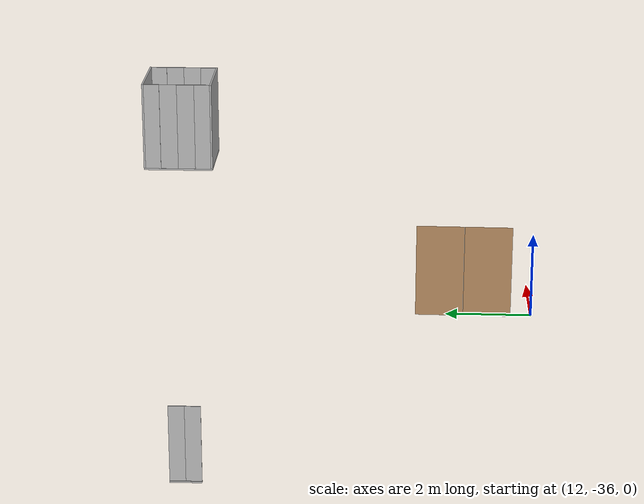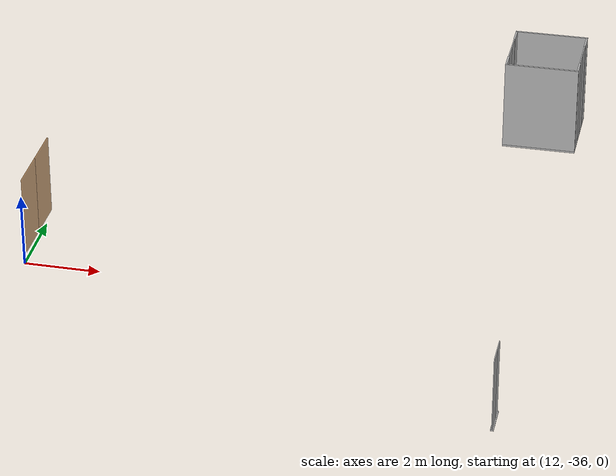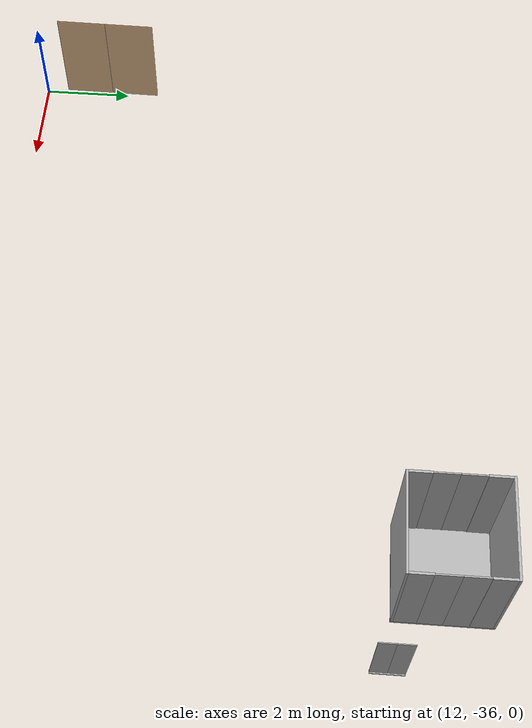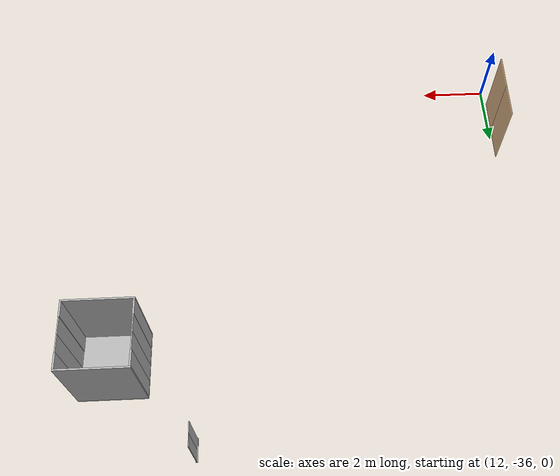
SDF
<sdf version="1.7">
 <world name="sim_world">
  <model name="door6">
   <pose>11.898422906864024 -34.40214692738752 0.0 0 0 -1.5884948974328337</pose>
   <link name="right">
    <pose>0.5618003268061672 0 1.11 0 0 0</pose>
    <visual name="right_visual">
     <geometry><box><size>1.1136006536123344 0.03 2.2</size></box></geometry>
     <material>
      <ambient>0.5 0.25 0 0.6</ambient>
      <diffuse>0.5 0.25 0 0.6</diffuse>
      <pbr><metal><metalness>0.0</metalness></metal></pbr>
     </material>
    </visual>
    <collision name="right_collision">
     <geometry><box><size>1.1136006536123344 0.03 2.2</size></box></geometry>
     <surface><contact><collide_bitmask>0x02</collide_bitmask></contact></surface>
    </collision>
    <inertial>
     <mass>50.0</mass>
     <inertia><ixx>20.17041666666667</ixx><iyy>25.333776732190913</iyy><izz>5.170860065524243</izz></inertia>
    </inertial>
   </link>
   <joint name="right_joint" type="revolute">
    <parent>world</parent>
    <child>right</child>
    <axis><xyz>0 0 -1</xyz><limit><lower>0</lower><upper>1.57</upper></limit></axis>
    <pose>0.5618003268061672 0 0 0 0 0</pose>
   </joint>
   <link name="left">
    <pose>-0.5618003268061672 0 1.11 0 0 0</pose>
    <visual name="left_visual">
     <geometry><box><size>1.1136006536123344 0.03 2.2</size></box></geometry>
     <material>
      <ambient>0.5 0.25 0 0.6</ambient>
      <diffuse>0.5 0.25 0 0.6</diffuse>
      <pbr><metal><metalness>0.0</metalness></metal></pbr>
     </material>
    </visual>
    <collision name="left_collision">
     <geometry><box><size>1.1136006536123344 0.03 2.2</size></box></geometry>
     <surface><contact><collide_bitmask>0x02</collide_bitmask></contact></surface>
    </collision>
    <inertial>
     <mass>50.0</mass>
     <inertia><ixx>20.17041666666667</ixx><iyy>25.333776732190913</iyy><izz>5.170860065524243</izz></inertia>
    </inertial>
   </link>
   <joint name="left_joint" type="revolute">
    <parent>world</parent>
    <child>left</child>
    <axis><xyz>0 0 -1</xyz><limit><lower>-1.57</lower><upper>0</upper></limit></axis>
    <pose>-0.5618003268061672 0 0 0 0 0</pose>
   </joint>
   <plugin name="register_component" filename="libregister_component.so">
    <component name="Door">
     <v_max_door>0.5</v_max_door>
     <a_max_door>0.3</a_max_door>
     <a_nom_door>0.15</a_nom_door>
     <dx_min_door>0.01</dx_min_door>
     <f_max_door>500.0</f_max_door>
     <ros_interface>true</ros_interface>
     <door name="door6" type="DoubleSwingDoor" left_joint_name="left_joint" right_joint_name="right_joint"/>
    </component>
   </plugin>
  </model>
  <model name="ShaftDoor_lift1_S1_doorS1">
   <pose>23.06746624736955 -26.387345423592567 -10.0 0 0 -1.57</pose>
   <link name="right_door">
    <pose>0.25 0 1.25 0 0 0</pose>
    <visual name="right_door_visual">
     <geometry><box><size>0.5 0.03 2.5</size></box></geometry>
     <material>
      <ambient>0.5 0.5 0.5 1</ambient>
      <diffuse>0.7 0.7 0.7 1</diffuse>
      <specular>0.6 0.6 0.6 1</specular>
      <emissive>0.1 0.1 0.1 1</emissive>
     </material>
    </visual>
    <collision name="right_door_collision">
     <geometry><box><size>0.5 0.03 2.5</size></box></geometry>
     <surface><contact><collide_bitmask>0x02</collide_bitmask></contact></surface>
    </collision>
   </link>
   <link name="left_door">
    <pose>-0.25 0 1.25 0 0 0</pose>
    <visual name="left_door_visual">
     <geometry><box><size>0.5 0.03 2.5</size></box></geometry>
     <material>
      <ambient>0.5 0.5 0.5 1</ambient>
      <diffuse>0.7 0.7 0.7 1</diffuse>
      <specular>0.6 0.6 0.6 1</specular>
      <emissive>0.1 0.1 0.1 1</emissive>
     </material>
    </visual>
    <collision name="left_door_collision">
     <geometry><box><size>0.5 0.03 2.5</size></box></geometry>
     <surface><contact><collide_bitmask>0x02</collide_bitmask></contact></surface>
    </collision>
   </link>
   <joint name="right_joint" type="prismatic">
    <parent>world</parent>
    <child>right_door</child>
    <axis><xyz>1 0 0</xyz><limit><lower>0</lower><upper>0.5</upper></limit></axis>
   </joint>
   <joint name="left_joint" type="prismatic">
    <parent>world</parent>
    <child>left_door</child>
    <axis><xyz>1 0 0</xyz><limit><lower>-0.5</lower><upper>0</upper></limit></axis>
   </joint>
   <link name="ramp">
    <pose>0 0 -0.025 0 0 0</pose>
    <visual name="ramp_visual">
     <geometry><box><size>1.0 0.1 0.05</size></box></geometry>
     <material>
      <ambient>0.5 0.5 0.5 1</ambient>
      <diffuse>0.7 0.7 0.7 1</diffuse>
      <specular>0.6 0.6 0.6 1</specular>
      <emissive>0.1 0.1 0.1 1</emissive>
     </material>
    </visual>
    <collision name="ramp_collision">
     <geometry><box><size>1.0 0.1 0.05</size></box></geometry>
     <surface><contact><collide_bitmask>0x02</collide_bitmask></contact></surface>
    </collision>
   </link>
   <joint name="ramp_joint" type="fixed"><parent>world</parent><child>ramp</child></joint>
   <plugin name="register_component" filename="libregister_component.so">
    <component name="Door">
     <v_max_door>0.3</v_max_door>
     <a_max_door>0.2</a_max_door>
     <a_nom_door>0.1</a_nom_door>
     <dx_min_door>0.0001</dx_min_door>
     <f_max_door>35.0</f_max_door>
     <door left_joint_name="left_joint" name="ShaftDoor_lift1_S1_doorS1" right_joint_name="right_joint" type="DoubleSlidingDoor"/>
    </component>
   </plugin>
  </model>
  <model name="lift1">
   <link name="platform">
    <inertial>
     <mass>1200</mass>
     <inertia><ixx>400.25000000000006</ixx><iyy>400.25000000000006</iyy><izz>800.0</izz></inertia>
    </inertial>
    <visual name="floor_visual">
     <pose>0 0 -0.025 0 0 0</pose>
     <geometry><box><size>2.0 2.0 0.05</size></box></geometry>
     <material>
      <ambient>0.5 0.5 0.5 1</ambient>
      <diffuse>0.7 0.7 0.7 1</diffuse>
      <specular>0.6 0.6 0.6 1</specular>
      <emissive>0.1 0.1 0.1 1</emissive>
     </material>
    </visual>
    <collision name="floor_collision">
     <pose>0 0 -0.025 0 0 0</pose>
     <geometry><box><size>2.0 2.0 0.05</size></box></geometry>
     <surface><contact><collide_bitmask>0x01</collide_bitmask></contact></surface>
    </collision>
    <visual name="frontwall1_visual">
     <pose>0.0 0.975 1.25 0 0 0</pose>
     <geometry><box><size>2.0 0.05 2.5</size></box></geometry>
     <material>
      <ambient>0.5 0.5 0.5 1</ambient>
      <diffuse>0.7 0.7 0.7 1</diffuse>
      <specular>0.6 0.6 0.6 1</specular>
      <emissive>0.1 0.1 0.1 1</emissive>
     </material>
    </visual>
    <collision name="frontwall1_collision">
     <pose>0.0 0.975 1.25 0 0 0</pose>
     <geometry><box><size>2.0 0.05 2.5</size></box></geometry>
     <surface><contact><collide_bitmask>0x01</collide_bitmask></contact></surface>
    </collision>
    <visual name="backwall1_visual">
     <pose>0.0 -0.975 1.25 0 0 0</pose>
     <geometry><box><size>2.0 0.05 2.5</size></box></geometry>
     <material>
      <ambient>0.5 0.5 0.5 1</ambient>
      <diffuse>0.7 0.7 0.7 1</diffuse>
      <specular>0.6 0.6 0.6 1</specular>
      <emissive>0.1 0.1 0.1 1</emissive>
     </material>
    </visual>
    <collision name="backwall1_collision">
     <pose>0.0 -0.975 1.25 0 0 0</pose>
     <geometry><box><size>2.0 0.05 2.5</size></box></geometry>
     <surface><contact><collide_bitmask>0x01</collide_bitmask></contact></surface>
    </collision>
    <visual name="leftwall1_visual">
     <pose>-0.975 -0.725 1.25 0 0 1.5707963267948966</pose>
     <geometry><box><size>0.44999999999999996 0.05 2.5</size></box></geometry>
     <material>
      <ambient>0.5 0.5 0.5 1</ambient>
      <diffuse>0.7 0.7 0.7 1</diffuse>
      <specular>0.6 0.6 0.6 1</specular>
      <emissive>0.1 0.1 0.1 1</emissive>
     </material>
    </visual>
    <collision name="leftwall1_collision">
     <pose>-0.975 -0.725 1.25 0 0 1.5707963267948966</pose>
     <geometry><box><size>0.44999999999999996 0.05 2.5</size></box></geometry>
     <surface><contact><collide_bitmask>0x01</collide_bitmask></contact></surface>
    </collision>
    <visual name="leftwall2_visual">
     <pose>-0.975 0.725 1.25 0 0 1.5707963267948966</pose>
     <geometry><box><size>0.44999999999999996 0.05 2.5</size></box></geometry>
     <material>
      <ambient>0.5 0.5 0.5 1</ambient>
      <diffuse>0.7 0.7 0.7 1</diffuse>
      <specular>0.6 0.6 0.6 1</specular>
      <emissive>0.1 0.1 0.1 1</emissive>
     </material>
    </visual>
    <collision name="leftwall2_collision">
     <pose>-0.975 0.725 1.25 0 0 1.5707963267948966</pose>
     <geometry><box><size>0.44999999999999996 0.05 2.5</size></box></geometry>
     <surface><contact><collide_bitmask>0x01</collide_bitmask></contact></surface>
    </collision>
    <visual name="rightwall1_visual">
     <pose>0.975 -0.725 1.25 0 0 1.5707963267948966</pose>
     <geometry><box><size>0.44999999999999996 0.05 2.5</size></box></geometry>
     <material>
      <ambient>0.5 0.5 0.5 1</ambient>
      <diffuse>0.7 0.7 0.7 1</diffuse>
      <specular>0.6 0.6 0.6 1</specular>
      <emissive>0.1 0.1 0.1 1</emissive>
     </material>
    </visual>
    <collision name="rightwall1_collision">
     <pose>0.975 -0.725 1.25 0 0 1.5707963267948966</pose>
     <geometry><box><size>0.44999999999999996 0.05 2.5</size></box></geometry>
     <surface><contact><collide_bitmask>0x01</collide_bitmask></contact></surface>
    </collision>
    <visual name="rightwall2_visual">
     <pose>0.975 0.725 1.25 0 0 1.5707963267948966</pose>
     <geometry><box><size>0.44999999999999996 0.05 2.5</size></box></geometry>
     <material>
      <ambient>0.5 0.5 0.5 1</ambient>
      <diffuse>0.7 0.7 0.7 1</diffuse>
      <specular>0.6 0.6 0.6 1</specular>
      <emissive>0.1 0.1 0.1 1</emissive>
     </material>
    </visual>
    <collision name="rightwall2_collision">
     <pose>0.975 0.725 1.25 0 0 1.5707963267948966</pose>
     <geometry><box><size>0.44999999999999996 0.05 2.5</size></box></geometry>
     <surface><contact><collide_bitmask>0x01</collide_bitmask></contact></surface>
    </collision>
   </link>
   <joint name="cabin_joint" type="prismatic">
    <parent>world</parent>
    <child>platform</child>
    <axis><xyz>0 0 1</xyz></axis>
   </joint>
   <model name="CabinDoor_lift1_doorL1">
    <pose>0.975 0.0 0 0 0 -1.57</pose>
    <link name="right_door">
     <pose>0.25 0 1.25 0 0 0</pose>
     <visual name="right_door_visual">
      <geometry><box><size>0.5 0.03 2.5</size></box></geometry>
      <material>
       <ambient>0.5 0.5 0.5 1</ambient>
       <diffuse>0.7 0.7 0.7 1</diffuse>
       <specular>0.6 0.6 0.6 1</specular>
       <emissive>0.1 0.1 0.1 1</emissive>
      </material>
     </visual>
     <collision name="right_door_collision">
      <geometry><box><size>0.5 0.03 2.5</size></box></geometry>
      <surface><contact><collide_bitmask>0x02</collide_bitmask></contact></surface>
     </collision>
    </link>
    <link name="left_door">
     <pose>-0.25 0 1.25 0 0 0</pose>
     <visual name="left_door_visual">
      <geometry><box><size>0.5 0.03 2.5</size></box></geometry>
      <material>
       <ambient>0.5 0.5 0.5 1</ambient>
       <diffuse>0.7 0.7 0.7 1</diffuse>
       <specular>0.6 0.6 0.6 1</specular>
       <emissive>0.1 0.1 0.1 1</emissive>
      </material>
     </visual>
     <collision name="left_door_collision">
      <geometry><box><size>0.5 0.03 2.5</size></box></geometry>
      <surface><contact><collide_bitmask>0x02</collide_bitmask></contact></surface>
     </collision>
    </link>
    <plugin name="register_component" filename="libregister_component.so">
     <component name="Door">
      <v_max_door>0.3</v_max_door>
      <a_max_door>0.2</a_max_door>
      <a_nom_door>0.1</a_nom_door>
      <dx_min_door>0.0001</dx_min_door>
      <f_max_door>35.0</f_max_door>
      <door left_joint_name="CabinDoor_lift1_doorL1_left_joint" name="CabinDoor_lift1_doorL1" right_joint_name="CabinDoor_lift1_doorL1_right_joint" type="DoubleSlidingDoor"/>
     </component>
    </plugin>
   </model>
   <joint name="CabinDoor_lift1_doorL1_right_joint" type="prismatic">
    <parent>platform</parent>
    <child>CabinDoor_lift1_doorL1::right_door</child>
    <axis><xyz>1 0 0</xyz><limit><lower>0</lower><upper>0.5</upper></limit></axis>
   </joint>
   <joint name="CabinDoor_lift1_doorL1_left_joint" type="prismatic">
    <parent>platform</parent>
    <child>CabinDoor_lift1_doorL1::left_door</child>
    <axis><xyz>1 0 0</xyz><limit><lower>-0.5</lower><upper>0</upper></limit></axis>
   </joint>
   <model name="CabinDoor_lift1_doorS1">
    <pose>-0.975 0.0 0 0 0 -1.57</pose>
    <link name="right_door">
     <pose>0.25 0 1.25 0 0 0</pose>
     <visual name="right_door_visual">
      <geometry><box><size>0.5 0.03 2.5</size></box></geometry>
      <material>
       <ambient>0.5 0.5 0.5 1</ambient>
       <diffuse>0.7 0.7 0.7 1</diffuse>
       <specular>0.6 0.6 0.6 1</specular>
       <emissive>0.1 0.1 0.1 1</emissive>
      </material>
     </visual>
     <collision name="right_door_collision">
      <geometry><box><size>0.5 0.03 2.5</size></box></geometry>
      <surface><contact><collide_bitmask>0x02</collide_bitmask></contact></surface>
     </collision>
    </link>
    <link name="left_door">
     <pose>-0.25 0 1.25 0 0 0</pose>
     <visual name="left_door_visual">
      <geometry><box><size>0.5 0.03 2.5</size></box></geometry>
      <material>
       <ambient>0.5 0.5 0.5 1</ambient>
       <diffuse>0.7 0.7 0.7 1</diffuse>
       <specular>0.6 0.6 0.6 1</specular>
       <emissive>0.1 0.1 0.1 1</emissive>
      </material>
     </visual>
     <collision name="left_door_collision">
      <geometry><box><size>0.5 0.03 2.5</size></box></geometry>
      <surface><contact><collide_bitmask>0x02</collide_bitmask></contact></surface>
     </collision>
    </link>
    <plugin name="register_component" filename="libregister_component.so">
     <component name="Door">
      <v_max_door>0.3</v_max_door>
      <a_max_door>0.2</a_max_door>
      <a_nom_door>0.1</a_nom_door>
      <dx_min_door>0.0001</dx_min_door>
      <f_max_door>35.0</f_max_door>
      <door left_joint_name="CabinDoor_lift1_doorS1_left_joint" name="CabinDoor_lift1_doorS1" right_joint_name="CabinDoor_lift1_doorS1_right_joint" type="DoubleSlidingDoor"/>
     </component>
    </plugin>
   </model>
   <joint name="CabinDoor_lift1_doorS1_right_joint" type="prismatic">
    <parent>platform</parent>
    <child>CabinDoor_lift1_doorS1::right_door</child>
    <axis><xyz>1 0 0</xyz><limit><lower>0</lower><upper>0.5</upper></limit></axis>
   </joint>
   <joint name="CabinDoor_lift1_doorS1_left_joint" type="prismatic">
    <parent>platform</parent>
    <child>CabinDoor_lift1_doorS1::left_door</child>
    <axis><xyz>1 0 0</xyz><limit><lower>-0.5</lower><upper>0</upper></limit></axis>
   </joint>
   <plugin name="register_component" filename="libregister_component.so">
    <component name="Lift">
     <lift_name>lift1</lift_name>
     <floor name="L1" elevation="0.0">
      <door_pair cabin_door="CabinDoor_lift1_doorL1" shaft_door="ShaftDoor_lift1_L1_doorL1"/>
     </floor>
     <floor name="S1" elevation="-10.0">
      <door_pair cabin_door="CabinDoor_lift1_doorS1" shaft_door="ShaftDoor_lift1_S1_doorS1"/>
     </floor>
     <initial_floor>L1</initial_floor>
     <v_max_cabin>2.0</v_max_cabin>
     <a_max_cabin>1.2</a_max_cabin>
     <a_nom_cabin>1.0</a_nom_cabin>
     <dx_min_cabin>0.001</dx_min_cabin>
     <f_max_cabin>25323.0</f_max_cabin>
     <cabin_joint_name>cabin_joint</cabin_joint_name>
    </component>
   </plugin>
   <pose>24.11746624736955 -26.387345423592567 0 0 0 0.0</pose>
  </model>
 </world>
</sdf>
